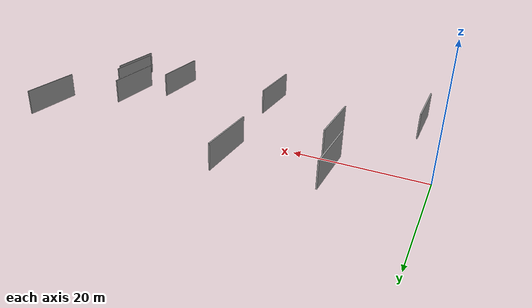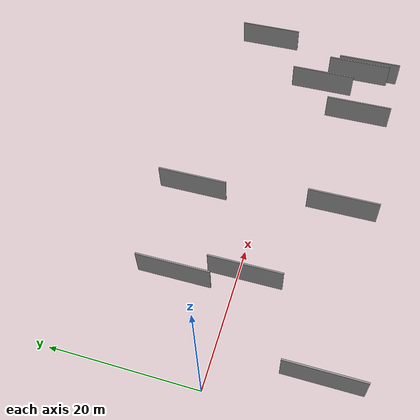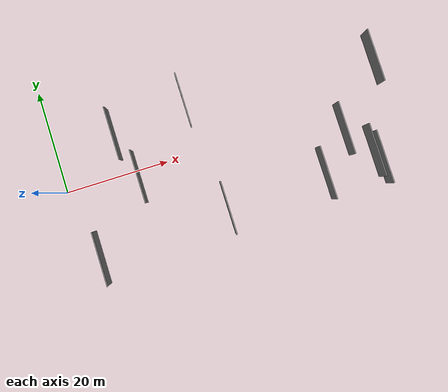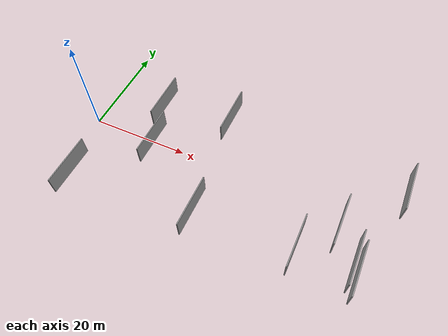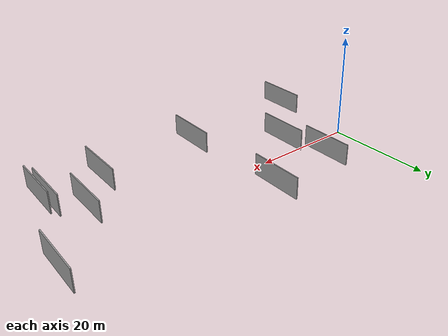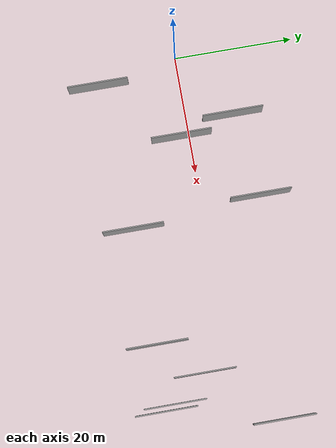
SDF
<sdf version="1.6">
 <world name="default">
  <scene>
   <sky><clouds><speed>12</speed></clouds></sky>
   <ambient>0.4 0.4 0.4 1</ambient>
   <background>0.7 0.7 0.7 1</background>
   <shadows>1</shadows>
  </scene>
  <gravity>0 0 -9.8066</gravity>
  <magnetic_field>6e-06 2.3e-05 -4.2e-05</magnetic_field>
  <physics default="0" name="default_physics" type="ode">
   <ode>
    <solver>
     <type>quick</type>
     <iters>10</iters>
     <sor>1.0</sor>
     <use_dynamic_moi_rescaling>0</use_dynamic_moi_rescaling>
    </solver>
    <constraints>
     <cfm>0</cfm>
     <erp>0.2</erp>
     <contact_max_correcting_vel>100</contact_max_correcting_vel>
     <contact_surface_layer>0.001</contact_surface_layer>
    </constraints>
   </ode>
   <max_step_size>0.004</max_step_size>
   <real_time_factor>1</real_time_factor>
   <real_time_update_rate>250</real_time_update_rate>
  </physics>
  <light name="sun" type="directional">
   <pose>0 0 10 0 0 0</pose>
   <diffuse>0.8 0.8 0.8 1</diffuse>
   <specular>0.2 0.2 0.2 1</specular>
   <attenuation>
    <range>1000</range>
    <constant>0.9</constant>
    <linear>0.01</linear>
    <quadratic>0.001</quadratic>
   </attenuation>
   <direction>-0.5 0.1 -0.9</direction>
  </light>
  <model name="grey_wall_1">
   <static>1</static>
   <pose>62.4474 6.8798 2.5 0.000000 0.000000 1.570796</pose>
   <link name="link">
    <pose>0 0 2.00 0 0 0</pose>
    <collision name="collision"><geometry><box><size>10.00 0.2 4.00</size></box></geometry></collision>
    <visual name="visual">
     <cast_shadows>0</cast_shadows>
     <geometry><box><size>10.00 0.2 4.00</size></box></geometry>
     <material>
      <script>
       <uri>model://grey_wall/materials/scripts</uri>
       <uri>model://grey_wall/materials/textures</uri>
       <name>vrc/grey_wall</name>
      </script>
     </material>
    </visual>
   </link>
  </model>
  <model name="grey_wall_2">
   <static>1</static>
   <pose>58.0626 -11.2391 2.5 0.000000 0.000000 1.570796</pose>
   <link name="link">
    <pose>0 0 2.00 0 0 0</pose>
    <collision name="collision"><geometry><box><size>10.00 0.2 4.00</size></box></geometry></collision>
    <visual name="visual">
     <cast_shadows>0</cast_shadows>
     <geometry><box><size>10.00 0.2 4.00</size></box></geometry>
     <material>
      <script>
       <uri>model://grey_wall/materials/scripts</uri>
       <uri>model://grey_wall/materials/textures</uri>
       <name>vrc/grey_wall</name>
      </script>
     </material>
    </visual>
   </link>
  </model>
  <model name="grey_wall_3">
   <static>1</static>
   <pose>57.2005 -9.6813 2.5 0.000000 0.000000 1.570796</pose>
   <link name="link">
    <pose>0 0 2.00 0 0 0</pose>
    <collision name="collision"><geometry><box><size>10.00 0.2 4.00</size></box></geometry></collision>
    <visual name="visual">
     <cast_shadows>0</cast_shadows>
     <geometry><box><size>10.00 0.2 4.00</size></box></geometry>
     <material>
      <script>
       <uri>model://grey_wall/materials/scripts</uri>
       <uri>model://grey_wall/materials/textures</uri>
       <name>vrc/grey_wall</name>
      </script>
     </material>
    </visual>
   </link>
  </model>
  <model name="grey_wall_4">
   <static>1</static>
   <pose>53.1282 -4.2259 2.5 0.000000 0.000000 1.570796</pose>
   <link name="link">
    <pose>0 0 2.00 0 0 0</pose>
    <collision name="collision"><geometry><box><size>10.00 0.2 4.00</size></box></geometry></collision>
    <visual name="visual">
     <cast_shadows>0</cast_shadows>
     <geometry><box><size>10.00 0.2 4.00</size></box></geometry>
     <material>
      <script>
       <uri>model://grey_wall/materials/scripts</uri>
       <uri>model://grey_wall/materials/textures</uri>
       <name>vrc/grey_wall</name>
      </script>
     </material>
    </visual>
   </link>
  </model>
  <model name="grey_wall_5">
   <static>1</static>
   <pose>3.7478 -13.4819 2.5 0.000000 0.000000 1.570796</pose>
   <link name="link">
    <pose>0 0 2.00 0 0 0</pose>
    <collision name="collision"><geometry><box><size>10.00 0.2 4.00</size></box></geometry></collision>
    <visual name="visual">
     <cast_shadows>0</cast_shadows>
     <geometry><box><size>10.00 0.2 4.00</size></box></geometry>
     <material>
      <script>
       <uri>model://grey_wall/materials/scripts</uri>
       <uri>model://grey_wall/materials/textures</uri>
       <name>vrc/grey_wall</name>
      </script>
     </material>
    </visual>
   </link>
  </model>
  <model name="grey_wall_6">
   <static>1</static>
   <pose>14.4593 -1.3659 2.5 0.000000 0.000000 1.570796</pose>
   <link name="link">
    <pose>0 0 2.00 0 0 0</pose>
    <collision name="collision"><geometry><box><size>10.00 0.2 4.00</size></box></geometry></collision>
    <visual name="visual">
     <cast_shadows>0</cast_shadows>
     <geometry><box><size>10.00 0.2 4.00</size></box></geometry>
     <material>
      <script>
       <uri>model://grey_wall/materials/scripts</uri>
       <uri>model://grey_wall/materials/textures</uri>
       <name>vrc/grey_wall</name>
      </script>
     </material>
    </visual>
   </link>
  </model>
  <model name="grey_wall_7">
   <static>1</static>
   <pose>28.3966 -11.6449 2.5 0.000000 0.000000 1.570796</pose>
   <link name="link">
    <pose>0 0 2.00 0 0 0</pose>
    <collision name="collision"><geometry><box><size>10.00 0.2 4.00</size></box></geometry></collision>
    <visual name="visual">
     <cast_shadows>0</cast_shadows>
     <geometry><box><size>10.00 0.2 4.00</size></box></geometry>
     <material>
      <script>
       <uri>model://grey_wall/materials/scripts</uri>
       <uri>model://grey_wall/materials/textures</uri>
       <name>vrc/grey_wall</name>
      </script>
     </material>
    </visual>
   </link>
  </model>
  <model name="grey_wall_8">
   <static>1</static>
   <pose>12.2081 7.5544 2.5 0.000000 0.000000 1.570796</pose>
   <link name="link">
    <pose>0 0 2.00 0 0 0</pose>
    <collision name="collision"><geometry><box><size>10.00 0.2 4.00</size></box></geometry></collision>
    <visual name="visual">
     <cast_shadows>0</cast_shadows>
     <geometry><box><size>10.00 0.2 4.00</size></box></geometry>
     <material>
      <script>
       <uri>model://grey_wall/materials/scripts</uri>
       <uri>model://grey_wall/materials/textures</uri>
       <name>vrc/grey_wall</name>
      </script>
     </material>
    </visual>
   </link>
  </model>
  <model name="grey_wall_9">
   <static>1</static>
   <pose>47.4219 -10.9531 2.5 0.000000 0.000000 1.570796</pose>
   <link name="link">
    <pose>0 0 2.00 0 0 0</pose>
    <collision name="collision"><geometry><box><size>10.00 0.2 4.00</size></box></geometry></collision>
    <visual name="visual">
     <cast_shadows>0</cast_shadows>
     <geometry><box><size>10.00 0.2 4.00</size></box></geometry>
     <material>
      <script>
       <uri>model://grey_wall/materials/scripts</uri>
       <uri>model://grey_wall/materials/textures</uri>
       <name>vrc/grey_wall</name>
      </script>
     </material>
    </visual>
   </link>
  </model>
  <model name="grey_wall_10">
   <static>1</static>
   <pose>26.3677 9.6606 2.5 0.000000 0.000000 1.570796</pose>
   <link name="link">
    <pose>0 0 2.00 0 0 0</pose>
    <collision name="collision"><geometry><box><size>10.00 0.2 4.00</size></box></geometry></collision>
    <visual name="visual">
     <cast_shadows>0</cast_shadows>
     <geometry><box><size>10.00 0.2 4.00</size></box></geometry>
     <material>
      <script>
       <uri>model://grey_wall/materials/scripts</uri>
       <uri>model://grey_wall/materials/textures</uri>
       <name>vrc/grey_wall</name>
      </script>
     </material>
    </visual>
   </link>
  </model>
 </world>
</sdf>
